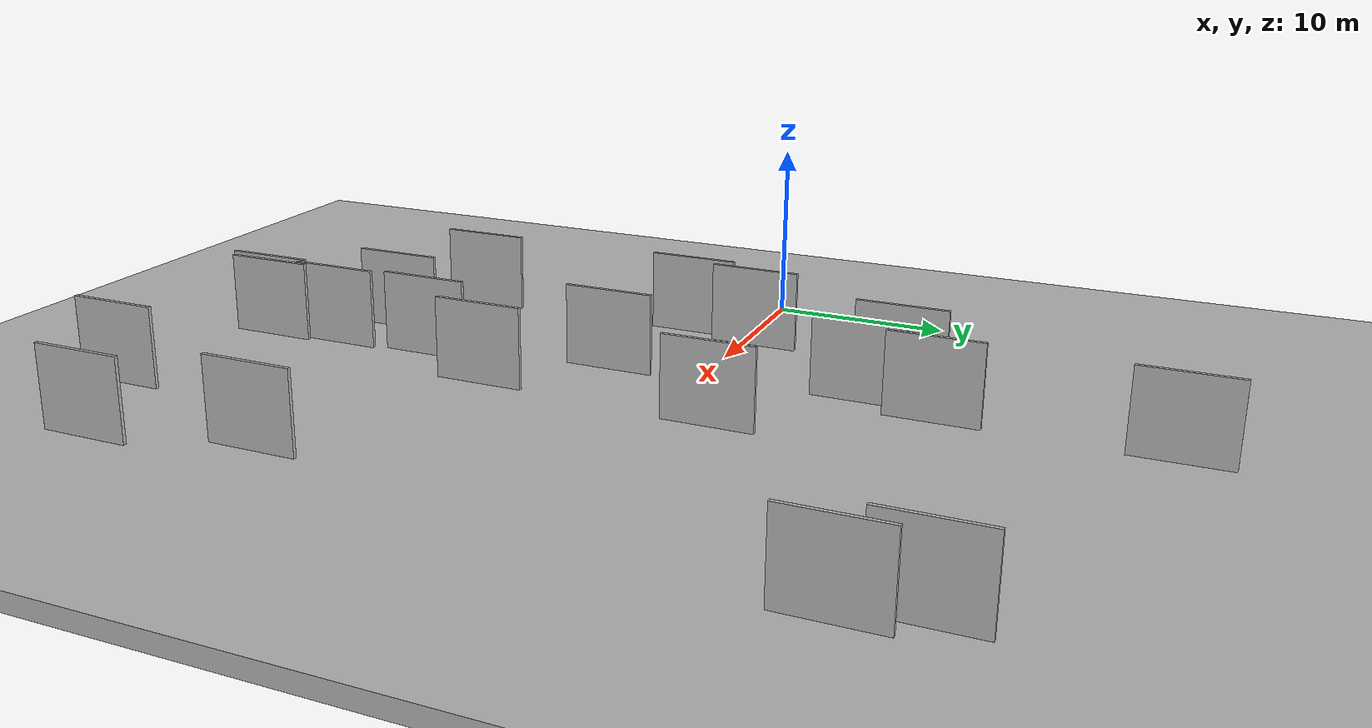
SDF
<?xml version="1.0" encoding="utf-8"?>

<sdf version="1.6">

   <world name="default">

      <gui fullscreen="0">

         <camera name="user_camera">

            <pose>-15 0 4.57585 0 0 0</pose>

            <view_controller>orbit</view_controller>

         </camera>

      </gui>

      <scene>

         <sky>

           <clouds>

             <speed>12</speed>

           </clouds>

         </sky>

         <ambient>0.4 0.4 0.4 1</ambient>

         <background>0.7 0.7 0.7 1</background>

         <shadows>1</shadows>

      </scene>

      <gravity>0 0 -9.8066</gravity>

      <magnetic_field>6e-06 2.3e-05 -4.2e-05</magnetic_field>

      <physics default="0" name="default_physics" type="ode">

         <ode>

            <solver>

               <type>quick</type>

               <iters>10</iters>

               <sor>1.0</sor>

               <use_dynamic_moi_rescaling>0</use_dynamic_moi_rescaling>

            </solver>

            <constraints>

               <cfm>0</cfm>

               <erp>0.2</erp>

               <contact_max_correcting_vel>100</contact_max_correcting_vel>

               <contact_surface_layer>0.001</contact_surface_layer>

            </constraints>

         </ode>

         <max_step_size>0.004</max_step_size>

         <real_time_factor>1</real_time_factor>

         <real_time_update_rate>250</real_time_update_rate>

      </physics>

      <light name="sun" type="directional">

         <cast_shadows>1</cast_shadows>

         <pose>0 0 10 0 0 0</pose>

         <diffuse>0.8 0.8 0.8 1</diffuse>

         <specular>0.2 0.2 0.2 1</specular>

         <attenuation>

            <range>1000</range>

            <constant>0.9</constant>

            <linear>0.01</linear>

            <quadratic>0.001</quadratic>

         </attenuation>

         <direction>-0.5 0.1 -0.9</direction>

      </light>

      <include>

         <name>ground_plane_1</name>

         <uri>model://HANNAS_ground_plane</uri>

         <pose>0 0 0  0 0 0</pose>

      </include>

      <include>

         <name>ground_plane_2</name>

         <uri>model://HANNAS_ground_plane</uri>

         <pose>100 0 0  0 0 0</pose>

      </include>

      <model name="HANNAS_wall_1">

         <static>1</static>

         <pose frame="">18.0232 -20.7523 0.0 0.000000 0.000000 1.570796</pose>

         <link name="link">

            <pose frame="">0 0 2.50 0 0 0</pose>

            <collision name="collision">

               <geometry>

                  <box>

                     <size>5.00 0.2 5.00</size>

                  </box>

               </geometry>

               <max_contacts>10</max_contacts>

               <surface>

                  <contact>

                     <ode/>

                  </contact>

                  <bounce/>

                  <friction>

                     <torsional>

                        <ode/>

                     </torsional>

                     <ode/>

                  </friction>

               </surface>

            </collision>

            <visual name="visual">

               <cast_shadows>0</cast_shadows>

               <geometry>

                  <box>

                     <size>5.00 0.2 5.00</size>

                  </box>

               </geometry>

               <material>

                  <script>

                     <uri>model://HANNAS_wall/materials/scripts</uri>

                     <uri>model://HANNAS_wall/materials/textures</uri>

                     <name>vrc/HANNAS_wall</name>

                  </script>

               </material>

            </visual>

            <self_collide>0</self_collide>

            <enable_wind>0</enable_wind>

            <kinematic>0</kinematic>

         </link>

      </model>

      <model name="HANNAS_wall_2">

         <static>1</static>

         <pose frame="">16.0861 24.9882 0.0 0.000000 0.000000 1.570796</pose>

         <link name="link">

            <pose frame="">0 0 2.50 0 0 0</pose>

            <collision name="collision">

               <geometry>

                  <box>

                     <size>5.00 0.2 5.00</size>

                  </box>

               </geometry>

               <max_contacts>10</max_contacts>

               <surface>

                  <contact>

                     <ode/>

                  </contact>

                  <bounce/>

                  <friction>

                     <torsional>

                        <ode/>

                     </torsional>

                     <ode/>

                  </friction>

               </surface>

            </collision>

            <visual name="visual">

               <cast_shadows>0</cast_shadows>

               <geometry>

                  <box>

                     <size>5.00 0.2 5.00</size>

                  </box>

               </geometry>

               <material>

                  <script>

                     <uri>model://HANNAS_wall/materials/scripts</uri>

                     <uri>model://HANNAS_wall/materials/textures</uri>

                     <name>vrc/HANNAS_wall</name>

                  </script>

               </material>

            </visual>

            <self_collide>0</self_collide>

            <enable_wind>0</enable_wind>

            <kinematic>0</kinematic>

         </link>

      </model>

      <model name="HANNAS_wall_3">

         <static>1</static>

         <pose frame="">36.1155 17.9932 0.0 0.000000 0.000000 1.570796</pose>

         <link name="link">

            <pose frame="">0 0 2.50 0 0 0</pose>

            <collision name="collision">

               <geometry>

                  <box>

                     <size>5.00 0.2 5.00</size>

                  </box>

               </geometry>

               <max_contacts>10</max_contacts>

               <surface>

                  <contact>

                     <ode/>

                  </contact>

                  <bounce/>

                  <friction>

                     <torsional>

                        <ode/>

                     </torsional>

                     <ode/>

                  </friction>

               </surface>

            </collision>

            <visual name="visual">

               <cast_shadows>0</cast_shadows>

               <geometry>

                  <box>

                     <size>5.00 0.2 5.00</size>

                  </box>

               </geometry>

               <material>

                  <script>

                     <uri>model://HANNAS_wall/materials/scripts</uri>

                     <uri>model://HANNAS_wall/materials/textures</uri>

                     <name>vrc/HANNAS_wall</name>

                  </script>

               </material>

            </visual>

            <self_collide>0</self_collide>

            <enable_wind>0</enable_wind>

            <kinematic>0</kinematic>

         </link>

      </model>

      <model name="HANNAS_wall_4">

         <static>1</static>

         <pose frame="">7.9356 -16.6146 0.0 0.000000 0.000000 1.570796</pose>

         <link name="link">

            <pose frame="">0 0 2.50 0 0 0</pose>

            <collision name="collision">

               <geometry>

                  <box>

                     <size>5.00 0.2 5.00</size>

                  </box>

               </geometry>

               <max_contacts>10</max_contacts>

               <surface>

                  <contact>

                     <ode/>

                  </contact>

                  <bounce/>

                  <friction>

                     <torsional>

                        <ode/>

                     </torsional>

                     <ode/>

                  </friction>

               </surface>

            </collision>

            <visual name="visual">

               <cast_shadows>0</cast_shadows>

               <geometry>

                  <box>

                     <size>5.00 0.2 5.00</size>

                  </box>

               </geometry>

               <material>

                  <script>

                     <uri>model://HANNAS_wall/materials/scripts</uri>

                     <uri>model://HANNAS_wall/materials/textures</uri>

                     <name>vrc/HANNAS_wall</name>

                  </script>

               </material>

            </visual>

            <self_collide>0</self_collide>

            <enable_wind>0</enable_wind>

            <kinematic>0</kinematic>

         </link>

      </model>

      <model name="HANNAS_wall_5">

         <static>1</static>

         <pose frame="">28.4817 -27.4013 0.0 0.000000 0.000000 1.570796</pose>

         <link name="link">

            <pose frame="">0 0 2.50 0 0 0</pose>

            <collision name="collision">

               <geometry>

                  <box>

                     <size>5.00 0.2 5.00</size>

                  </box>

               </geometry>

               <max_contacts>10</max_contacts>

               <surface>

                  <contact>

                     <ode/>

                  </contact>

                  <bounce/>

                  <friction>

                     <torsional>

                        <ode/>

                     </torsional>

                     <ode/>

                  </friction>

               </surface>

            </collision>

            <visual name="visual">

               <cast_shadows>0</cast_shadows>

               <geometry>

                  <box>

                     <size>5.00 0.2 5.00</size>

                  </box>

               </geometry>

               <material>

                  <script>

                     <uri>model://HANNAS_wall/materials/scripts</uri>

                     <uri>model://HANNAS_wall/materials/textures</uri>

                     <name>vrc/HANNAS_wall</name>

                  </script>

               </material>

            </visual>

            <self_collide>0</self_collide>

            <enable_wind>0</enable_wind>

            <kinematic>0</kinematic>

         </link>

      </model>

      <model name="HANNAS_wall_6">

         <static>1</static>

         <pose frame="">14.6880 9.0105 0.0 0.000000 0.000000 1.570796</pose>

         <link name="link">

            <pose frame="">0 0 2.50 0 0 0</pose>

            <collision name="collision">

               <geometry>

                  <box>

                     <size>5.00 0.2 5.00</size>

                  </box>

               </geometry>

               <max_contacts>10</max_contacts>

               <surface>

                  <contact>

                     <ode/>

                  </contact>

                  <bounce/>

                  <friction>

                     <torsional>

                        <ode/>

                     </torsional>

                     <ode/>

                  </friction>

               </surface>

            </collision>

            <visual name="visual">

               <cast_shadows>0</cast_shadows>

               <geometry>

                  <box>

                     <size>5.00 0.2 5.00</size>

                  </box>

               </geometry>

               <material>

                  <script>

                     <uri>model://HANNAS_wall/materials/scripts</uri>

                     <uri>model://HANNAS_wall/materials/textures</uri>

                     <name>vrc/HANNAS_wall</name>

                  </script>

               </material>

            </visual>

            <self_collide>0</self_collide>

            <enable_wind>0</enable_wind>

            <kinematic>0</kinematic>

         </link>

      </model>

      <model name="HANNAS_wall_7">

         <static>1</static>

         <pose frame="">11.6322 10.4005 0.0 0.000000 0.000000 1.570796</pose>

         <link name="link">

            <pose frame="">0 0 2.50 0 0 0</pose>

            <collision name="collision">

               <geometry>

                  <box>

                     <size>5.00 0.2 5.00</size>

                  </box>

               </geometry>

               <max_contacts>10</max_contacts>

               <surface>

                  <contact>

                     <ode/>

                  </contact>

                  <bounce/>

                  <friction>

                     <torsional>

                        <ode/>

                     </torsional>

                     <ode/>

                  </friction>

               </surface>

            </collision>

            <visual name="visual">

               <cast_shadows>0</cast_shadows>

               <geometry>

                  <box>

                     <size>5.00 0.2 5.00</size>

                  </box>

               </geometry>

               <material>

                  <script>

                     <uri>model://HANNAS_wall/materials/scripts</uri>

                     <uri>model://HANNAS_wall/materials/textures</uri>

                     <name>vrc/HANNAS_wall</name>

                  </script>

               </material>

            </visual>

            <self_collide>0</self_collide>

            <enable_wind>0</enable_wind>

            <kinematic>0</kinematic>

         </link>

      </model>

      <model name="HANNAS_wall_8">

         <static>1</static>

         <pose frame="">7.6133 -2.9683 0.0 0.000000 0.000000 1.570796</pose>

         <link name="link">

            <pose frame="">0 0 2.50 0 0 0</pose>

            <collision name="collision">

               <geometry>

                  <box>

                     <size>5.00 0.2 5.00</size>

                  </box>

               </geometry>

               <max_contacts>10</max_contacts>

               <surface>

                  <contact>

                     <ode/>

                  </contact>

                  <bounce/>

                  <friction>

                     <torsional>

                        <ode/>

                     </torsional>

                     <ode/>

                  </friction>

               </surface>

            </collision>

            <visual name="visual">

               <cast_shadows>0</cast_shadows>

               <geometry>

                  <box>

                     <size>5.00 0.2 5.00</size>

                  </box>

               </geometry>

               <material>

                  <script>

                     <uri>model://HANNAS_wall/materials/scripts</uri>

                     <uri>model://HANNAS_wall/materials/textures</uri>

                     <name>vrc/HANNAS_wall</name>

                  </script>

               </material>

            </visual>

            <self_collide>0</self_collide>

            <enable_wind>0</enable_wind>

            <kinematic>0</kinematic>

         </link>

      </model>

      <model name="HANNAS_wall_9">

         <static>1</static>

         <pose frame="">8.4627 1.1074 0.0 0.000000 0.000000 1.570796</pose>

         <link name="link">

            <pose frame="">0 0 2.50 0 0 0</pose>

            <collision name="collision">

               <geometry>

                  <box>

                     <size>5.00 0.2 5.00</size>

                  </box>

               </geometry>

               <max_contacts>10</max_contacts>

               <surface>

                  <contact>

                     <ode/>

                  </contact>

                  <bounce/>

                  <friction>

                     <torsional>

                        <ode/>

                     </torsional>

                     <ode/>

                  </friction>

               </surface>

            </collision>

            <visual name="visual">

               <cast_shadows>0</cast_shadows>

               <geometry>

                  <box>

                     <size>5.00 0.2 5.00</size>

                  </box>

               </geometry>

               <material>

                  <script>

                     <uri>model://HANNAS_wall/materials/scripts</uri>

                     <uri>model://HANNAS_wall/materials/textures</uri>

                     <name>vrc/HANNAS_wall</name>

                  </script>

               </material>

            </visual>

            <self_collide>0</self_collide>

            <enable_wind>0</enable_wind>

            <kinematic>0</kinematic>

         </link>

      </model>

      <model name="HANNAS_wall_10">

         <static>1</static>

         <pose frame="">14.0413 -19.0439 0.0 0.000000 0.000000 1.570796</pose>

         <link name="link">

            <pose frame="">0 0 2.50 0 0 0</pose>

            <collision name="collision">

               <geometry>

                  <box>

                     <size>5.00 0.2 5.00</size>

                  </box>

               </geometry>

               <max_contacts>10</max_contacts>

               <surface>

                  <contact>

                     <ode/>

                  </contact>

                  <bounce/>

                  <friction>

                     <torsional>

                        <ode/>

                     </torsional>

                     <ode/>

                  </friction>

               </surface>

            </collision>

            <visual name="visual">

               <cast_shadows>0</cast_shadows>

               <geometry>

                  <box>

                     <size>5.00 0.2 5.00</size>

                  </box>

               </geometry>

               <material>

                  <script>

                     <uri>model://HANNAS_wall/materials/scripts</uri>

                     <uri>model://HANNAS_wall/materials/textures</uri>

                     <name>vrc/HANNAS_wall</name>

                  </script>

               </material>

            </visual>

            <self_collide>0</self_collide>

            <enable_wind>0</enable_wind>

            <kinematic>0</kinematic>

         </link>

      </model>

      <model name="HANNAS_wall_11">

         <static>1</static>

         <pose frame="">21.1337 3.2868 0.0 0.000000 0.000000 1.570796</pose>

         <link name="link">

            <pose frame="">0 0 2.50 0 0 0</pose>

            <collision name="collision">

               <geometry>

                  <box>

                     <size>5.00 0.2 5.00</size>

                  </box>

               </geometry>

               <max_contacts>10</max_contacts>

               <surface>

                  <contact>

                     <ode/>

                  </contact>

                  <bounce/>

                  <friction>

                     <torsional>

                        <ode/>

                     </torsional>

                     <ode/>

                  </friction>

               </surface>

            </collision>

            <visual name="visual">

               <cast_shadows>0</cast_shadows>

               <geometry>

                  <box>

                     <size>5.00 0.2 5.00</size>

                  </box>

               </geometry>

               <material>

                  <script>

                     <uri>model://HANNAS_wall/materials/scripts</uri>

                     <uri>model://HANNAS_wall/materials/textures</uri>

                     <name>vrc/HANNAS_wall</name>

                  </script>

               </material>

            </visual>

            <self_collide>0</self_collide>

            <enable_wind>0</enable_wind>

            <kinematic>0</kinematic>

         </link>

      </model>

      <model name="HANNAS_wall_12">

         <static>1</static>

         <pose frame="">15.9284 13.1924 0.0 0.000000 0.000000 1.570796</pose>

         <link name="link">

            <pose frame="">0 0 2.50 0 0 0</pose>

            <collision name="collision">

               <geometry>

                  <box>

                     <size>5.00 0.2 5.00</size>

                  </box>

               </geometry>

               <max_contacts>10</max_contacts>

               <surface>

                  <contact>

                     <ode/>

                  </contact>

                  <bounce/>

                  <friction>

                     <torsional>

                        <ode/>

                     </torsional>

                     <ode/>

                  </friction>

               </surface>

            </collision>

            <visual name="visual">

               <cast_shadows>0</cast_shadows>

               <geometry>

                  <box>

                     <size>5.00 0.2 5.00</size>

                  </box>

               </geometry>

               <material>

                  <script>

                     <uri>model://HANNAS_wall/materials/scripts</uri>

                     <uri>model://HANNAS_wall/materials/textures</uri>

                     <name>vrc/HANNAS_wall</name>

                  </script>

               </material>

            </visual>

            <self_collide>0</self_collide>

            <enable_wind>0</enable_wind>

            <kinematic>0</kinematic>

         </link>

      </model>

      <model name="HANNAS_wall_13">

         <static>1</static>

         <pose frame="">17.6275 -25.4972 0.0 0.000000 0.000000 1.570796</pose>

         <link name="link">

            <pose frame="">0 0 2.50 0 0 0</pose>

            <collision name="collision">

               <geometry>

                  <box>

                     <size>5.00 0.2 5.00</size>

                  </box>

               </geometry>

               <max_contacts>10</max_contacts>

               <surface>

                  <contact>

                     <ode/>

                  </contact>

                  <bounce/>

                  <friction>

                     <torsional>

                        <ode/>

                     </torsional>

                     <ode/>

                  </friction>

               </surface>

            </collision>

            <visual name="visual">

               <cast_shadows>0</cast_shadows>

               <geometry>

                  <box>

                     <size>5.00 0.2 5.00</size>

                  </box>

               </geometry>

               <material>

                  <script>

                     <uri>model://HANNAS_wall/materials/scripts</uri>

                     <uri>model://HANNAS_wall/materials/textures</uri>

                     <name>vrc/HANNAS_wall</name>

                  </script>

               </material>

            </visual>

            <self_collide>0</self_collide>

            <enable_wind>0</enable_wind>

            <kinematic>0</kinematic>

         </link>

      </model>

      <model name="HANNAS_wall_14">

         <static>1</static>

         <pose frame="">20.5520 -9.9578 0.0 0.000000 0.000000 1.570796</pose>

         <link name="link">

            <pose frame="">0 0 2.50 0 0 0</pose>

            <collision name="collision">

               <geometry>

                  <box>

                     <size>5.00 0.2 5.00</size>

                  </box>

               </geometry>

               <max_contacts>10</max_contacts>

               <surface>

                  <contact>

                     <ode/>

                  </contact>

                  <bounce/>

                  <friction>

                     <torsional>

                        <ode/>

                     </torsional>

                     <ode/>

                  </friction>

               </surface>

            </collision>

            <visual name="visual">

               <cast_shadows>0</cast_shadows>

               <geometry>

                  <box>

                     <size>5.00 0.2 5.00</size>

                  </box>

               </geometry>

               <material>

                  <script>

                     <uri>model://HANNAS_wall/materials/scripts</uri>

                     <uri>model://HANNAS_wall/materials/textures</uri>

                     <name>vrc/HANNAS_wall</name>

                  </script>

               </material>

            </visual>

            <self_collide>0</self_collide>

            <enable_wind>0</enable_wind>

            <kinematic>0</kinematic>

         </link>

      </model>

      <model name="HANNAS_wall_15">

         <static>1</static>

         <pose frame="">18.4075 -24.9637 0.0 0.000000 0.000000 1.570796</pose>

         <link name="link">

            <pose frame="">0 0 2.50 0 0 0</pose>

            <collision name="collision">

               <geometry>

                  <box>

                     <size>5.00 0.2 5.00</size>

                  </box>

               </geometry>

               <max_contacts>10</max_contacts>

               <surface>

                  <contact>

                     <ode/>

                  </contact>

                  <bounce/>

                  <friction>

                     <torsional>

                        <ode/>

                     </torsional>

                     <ode/>

                  </friction>

               </surface>

            </collision>

            <visual name="visual">

               <cast_shadows>0</cast_shadows>

               <geometry>

                  <box>

                     <size>5.00 0.2 5.00</size>

                  </box>

               </geometry>

               <material>

                  <script>

                     <uri>model://HANNAS_wall/materials/scripts</uri>

                     <uri>model://HANNAS_wall/materials/textures</uri>

                     <name>vrc/HANNAS_wall</name>

                  </script>

               </material>

            </visual>

            <self_collide>0</self_collide>

            <enable_wind>0</enable_wind>

            <kinematic>0</kinematic>

         </link>

      </model>

      <model name="HANNAS_wall_16">

         <static>1</static>

         <pose frame="">35.1858 -23.5347 0.0 0.000000 0.000000 1.570796</pose>

         <link name="link">

            <pose frame="">0 0 2.50 0 0 0</pose>

            <collision name="collision">

               <geometry>

                  <box>

                     <size>5.00 0.2 5.00</size>

                  </box>

               </geometry>

               <max_contacts>10</max_contacts>

               <surface>

                  <contact>

                     <ode/>

                  </contact>

                  <bounce/>

                  <friction>

                     <torsional>

                        <ode/>

                     </torsional>

                     <ode/>

                  </friction>

               </surface>

            </collision>

            <visual name="visual">

               <cast_shadows>0</cast_shadows>

               <geometry>

                  <box>

                     <size>5.00 0.2 5.00</size>

                  </box>

               </geometry>

               <material>

                  <script>

                     <uri>model://HANNAS_wall/materials/scripts</uri>

                     <uri>model://HANNAS_wall/materials/textures</uri>

                     <name>vrc/HANNAS_wall</name>

                  </script>

               </material>

            </visual>

            <self_collide>0</self_collide>

            <enable_wind>0</enable_wind>

            <kinematic>0</kinematic>

         </link>

      </model>

      <model name="HANNAS_wall_17">

         <static>1</static>

         <pose frame="">15.5794 -4.6722 0.0 0.000000 0.000000 1.570796</pose>

         <link name="link">

            <pose frame="">0 0 2.50 0 0 0</pose>

            <collision name="collision">

               <geometry>

                  <box>

                     <size>5.00 0.2 5.00</size>

                  </box>

               </geometry>

               <max_contacts>10</max_contacts>

               <surface>

                  <contact>

                     <ode/>

                  </contact>

                  <bounce/>

                  <friction>

                     <torsional>

                        <ode/>

                     </torsional>

                     <ode/>

                  </friction>

               </surface>

            </collision>

            <visual name="visual">

               <cast_shadows>0</cast_shadows>

               <geometry>

                  <box>

                     <size>5.00 0.2 5.00</size>

                  </box>

               </geometry>

               <material>

                  <script>

                     <uri>model://HANNAS_wall/materials/scripts</uri>

                     <uri>model://HANNAS_wall/materials/textures</uri>

                     <name>vrc/HANNAS_wall</name>

                  </script>

               </material>

            </visual>

            <self_collide>0</self_collide>

            <enable_wind>0</enable_wind>

            <kinematic>0</kinematic>

         </link>

      </model>

      <model name="HANNAS_wall_18">

         <static>1</static>

         <pose frame="">33.0906 -15.1707 0.0 0.000000 0.000000 1.570796</pose>

         <link name="link">

            <pose frame="">0 0 2.50 0 0 0</pose>

            <collision name="collision">

               <geometry>

                  <box>

                     <size>5.00 0.2 5.00</size>

                  </box>

               </geometry>

               <max_contacts>10</max_contacts>

               <surface>

                  <contact>

                     <ode/>

                  </contact>

                  <bounce/>

                  <friction>

                     <torsional>

                        <ode/>

                     </torsional>

                     <ode/>

                  </friction>

               </surface>

            </collision>

            <visual name="visual">

               <cast_shadows>0</cast_shadows>

               <geometry>

                  <box>

                     <size>5.00 0.2 5.00</size>

                  </box>

               </geometry>

               <material>

                  <script>

                     <uri>model://HANNAS_wall/materials/scripts</uri>

                     <uri>model://HANNAS_wall/materials/textures</uri>

                     <name>vrc/HANNAS_wall</name>

                  </script>

               </material>

            </visual>

            <self_collide>0</self_collide>

            <enable_wind>0</enable_wind>

            <kinematic>0</kinematic>

         </link>

      </model>

      <model name="HANNAS_wall_19">

         <static>1</static>

         <pose frame="">37.3563 14.6044 0.0 0.000000 0.000000 1.570796</pose>

         <link name="link">

            <pose frame="">0 0 2.50 0 0 0</pose>

            <collision name="collision">

               <geometry>

                  <box>

                     <size>5.00 0.2 5.00</size>

                  </box>

               </geometry>

               <max_contacts>10</max_contacts>

               <surface>

                  <contact>

                     <ode/>

                  </contact>

                  <bounce/>

                  <friction>

                     <torsional>

                        <ode/>

                     </torsional>

                     <ode/>

                  </friction>

               </surface>

            </collision>

            <visual name="visual">

               <cast_shadows>0</cast_shadows>

               <geometry>

                  <box>

                     <size>5.00 0.2 5.00</size>

                  </box>

               </geometry>

               <material>

                  <script>

                     <uri>model://HANNAS_wall/materials/scripts</uri>

                     <uri>model://HANNAS_wall/materials/textures</uri>

                     <name>vrc/HANNAS_wall</name>

                  </script>

               </material>

            </visual>

            <self_collide>0</self_collide>

            <enable_wind>0</enable_wind>

            <kinematic>0</kinematic>

         </link>

      </model>

      <model name="HANNAS_wall_20">

         <static>1</static>

         <pose frame="">17.6524 -15.0622 0.0 0.000000 0.000000 1.570796</pose>

         <link name="link">

            <pose frame="">0 0 2.50 0 0 0</pose>

            <collision name="collision">

               <geometry>

                  <box>

                     <size>5.00 0.2 5.00</size>

                  </box>

               </geometry>

               <max_contacts>10</max_contacts>

               <surface>

                  <contact>

                     <ode/>

                  </contact>

                  <bounce/>

                  <friction>

                     <torsional>

                        <ode/>

                     </torsional>

                     <ode/>

                  </friction>

               </surface>

            </collision>

            <visual name="visual">

               <cast_shadows>0</cast_shadows>

               <geometry>

                  <box>

                     <size>5.00 0.2 5.00</size>

                  </box>

               </geometry>

               <material>

                  <script>

                     <uri>model://HANNAS_wall/materials/scripts</uri>

                     <uri>model://HANNAS_wall/materials/textures</uri>

                     <name>vrc/HANNAS_wall</name>

                  </script>

               </material>

            </visual>

            <self_collide>0</self_collide>

            <enable_wind>0</enable_wind>

            <kinematic>0</kinematic>

         </link>

      </model>

   </world>

</sdf>

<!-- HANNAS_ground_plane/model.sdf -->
<sdf version="1.4">
<model name="HANNAS_ground_plane">
  <static>true</static>
    <link name="link">
      <collision name="collision">
        <geometry>
          <plane>
            <normal>0 0 1</normal>
            <size>1000 1000</size>
          </plane>
        </geometry>
        <surface>
          <friction>
            <ode>
              <mu>100</mu>
              <mu2>50</mu2>
            </ode>
          </friction>
        </surface>
      </collision>
      <visual name="visual">
        <cast_shadows>false</cast_shadows>
        <geometry>
          <plane>
            <normal>0 0 1</normal>
            <size>1000 1000</size>
          </plane>
        </geometry>
        <material>
          <script>
            <uri>model://HANNAS_ground_plane/materials/scripts/HANNAS_ground_plane.material</uri>
	    <uri>model://HANNAS_ground_plane/materials/textures</uri>
            <name>HANNASGroundPlane/Image</name>
          </script>
        </material>
      </visual>
    </link>
  </model>
</sdf>
